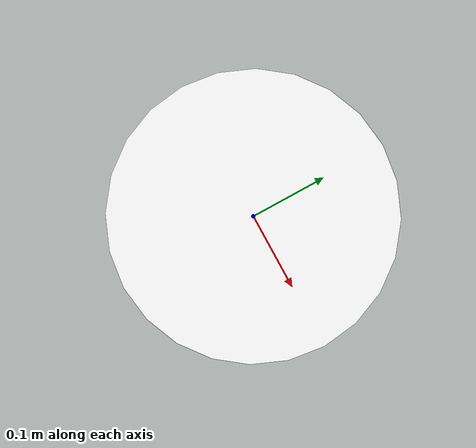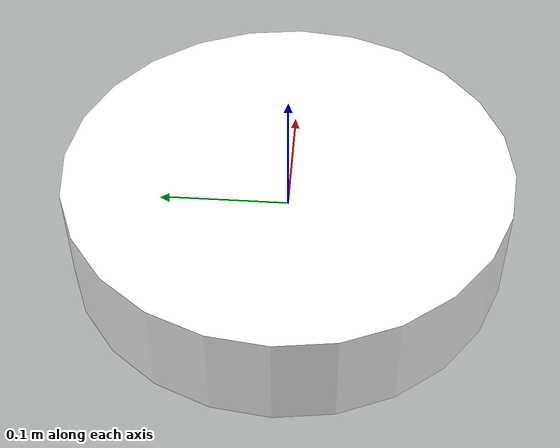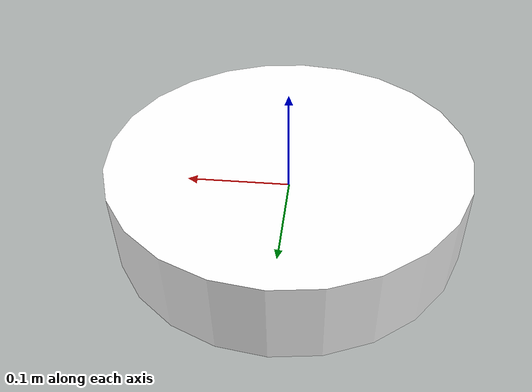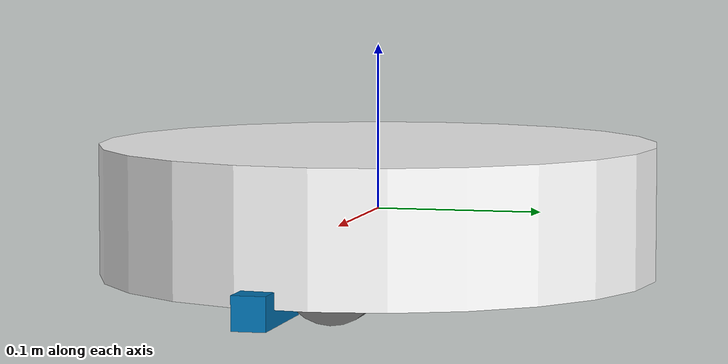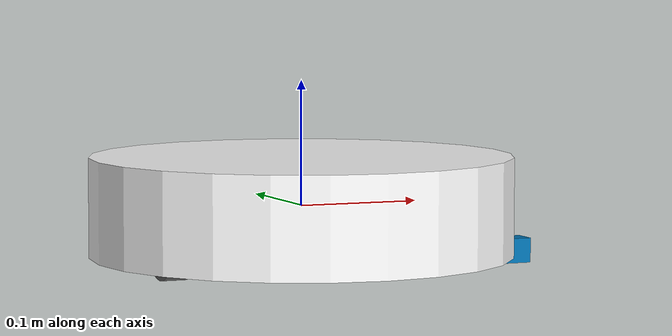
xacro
<robot name="roomba" xmlns:xacro="http://ros.org/wiki/xacro">
	<material name="white">
		<color rgba="1 1 1 1" />
	</material>

	<material name="grey">
		<color rgba="0.4 0.4 0.4 1" />
	</material>

	<link name="base_link">
		<visual>
			<origin xyz="0 0 0" rpy="0 0 0" />
			<geometry>
				<cylinder length="0.08" radius="0.17" />
			</geometry>
			<material name="white" />
		</visual>
		<collision>
			<origin xyz="0 0 0" rpy="0 0 0" />
			<geometry>
				<cylinder length="0.08" radius="0.17" />
			</geometry>
		</collision>
	</link>

	<xacro:macro name="wheel" params="name offset">
		<link name="wheel_${name}">
			<visual>
				<origin xyz="0 0 0" rpy="1.5707 0 0" />
				<geometry>
					<cylinder length="0.02" radius="0.03" />
				</geometry>
				<material name="grey" />
			</visual>
			<collision>
				<origin xyz="0 0 0" rpy="1.5707 0 0" />
				<geometry>
					<cylinder length="0.02" radius="0.03" />
				</geometry>
			</collision>
		</link>

		<joint name="wheel_${name}_spin" type="continuous">
			<parent link="base_link" />
			<child link="wheel_${name}" />
			<origin xyz="${offset} 0 -0.025" rpy="0 0 1.5707" />
			<axis xyz="0 1 0" />
		</joint>
	</xacro:macro>

	<xacro:wheel name="left" offset="-0.11" />
	<xacro:wheel name="right" offset="0.11" />

	<link name="main_brush">
		<visual>
			<origin xyz="0 0 0" rpy="0 0 0" />
			<geometry>
				<box size="0.15 0.04 0.01" />
			</geometry>
		</visual>
		<collision>
			<origin xyz="0 0 0" rpy="0 0 0" />
			<geometry>
				<box size="0.15 0.04 0.01" />
			</geometry>
		</collision>
	</link>

	<link name="side_brush">
		<visual>
			<origin xyz="0 0 0" rpy="0 0 0" />
			<geometry>
				<box size="0.07 0.02 0.02" />
			</geometry>
		</visual>
		<collision>
			<origin xyz="0 0 0" rpy="0 0 0" />
			<geometry>
				<box size="0.07 0.04 0.01" />
			</geometry>
		</collision>
	</link>

	<joint name="main_brush_spin" type="continuous">
		<parent link="base_link" />
		<child link="main_brush" />
		<origin xyz="0.00 0.03 -0.03" rpy="0 0 0" />
		<axis xyz="1 0 0" />
	</joint>
	<joint name="side_brush_spin" type="continuous">
		<parent link="base_link" />
		<child link="side_brush" />
		<origin xyz="0.15 -0.03 -0.04" rpy="0 0 0" />
		<axis xyz="0 0 1" />
	</joint>
</robot>
